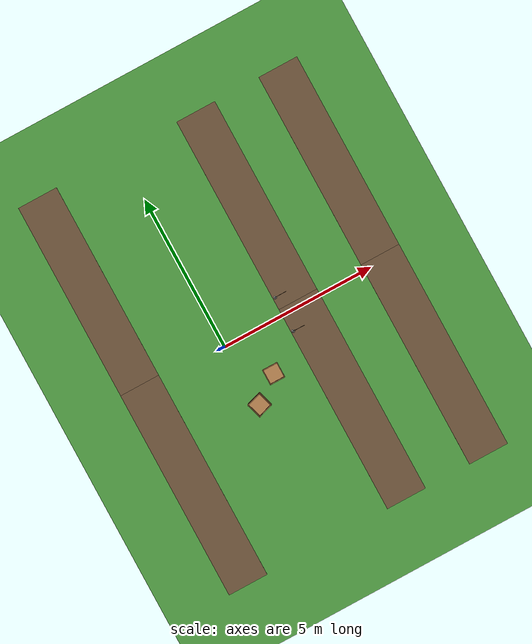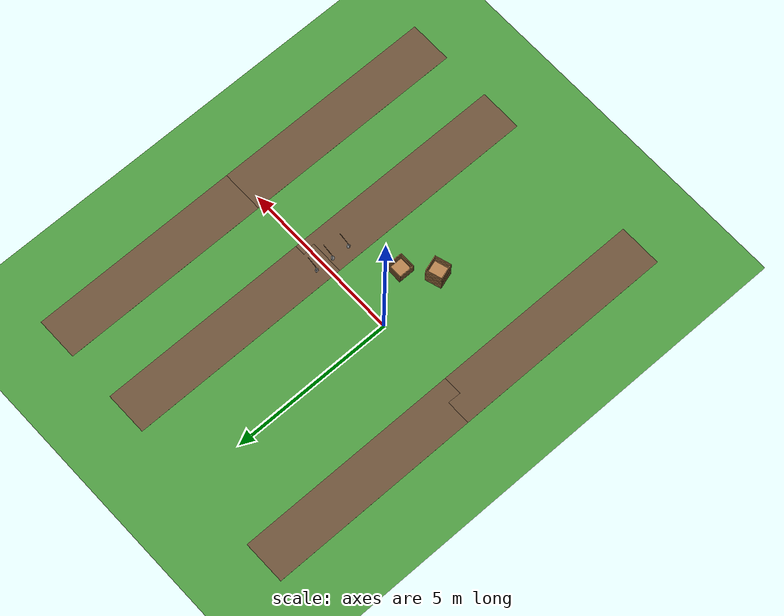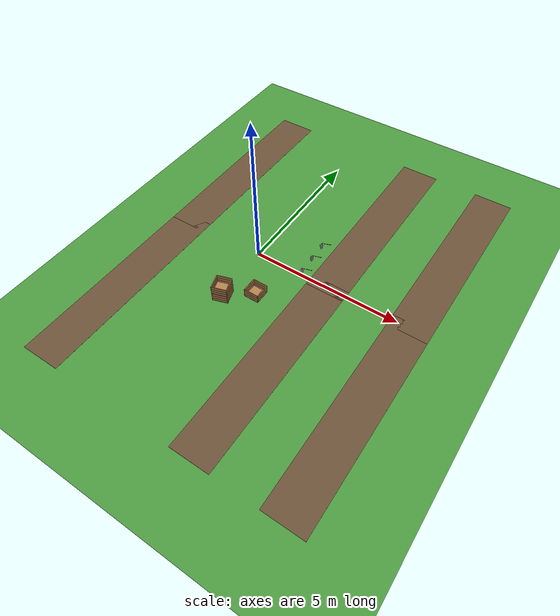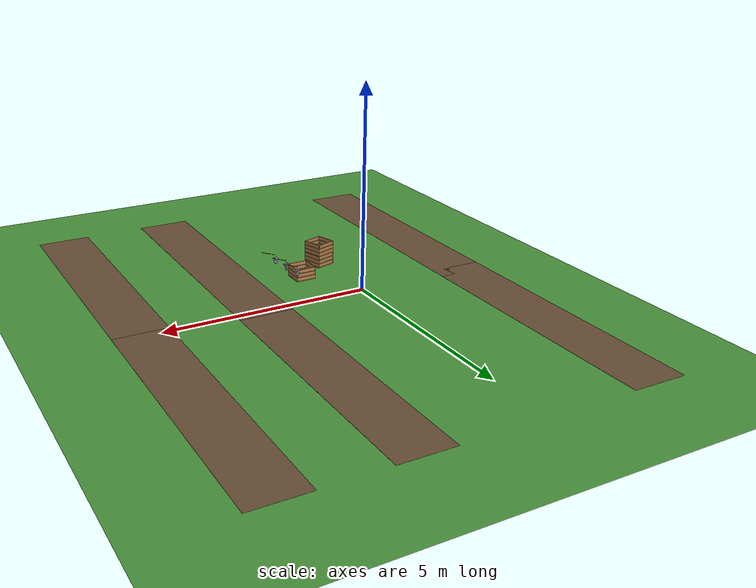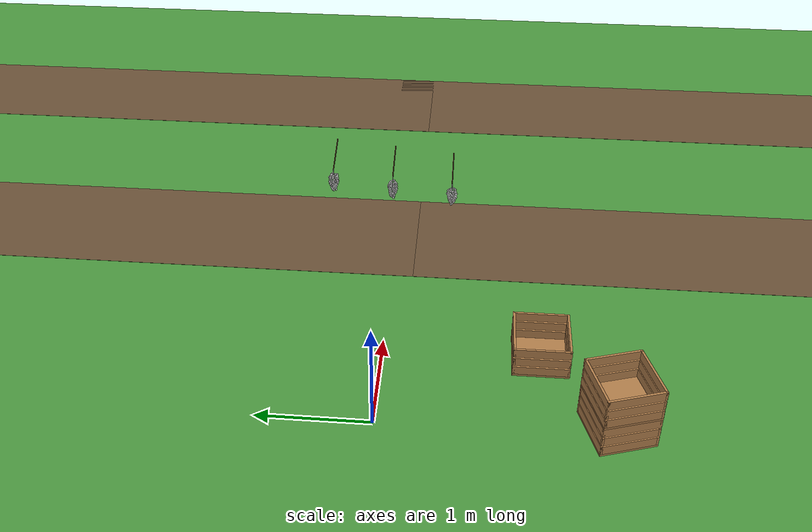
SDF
<sdf version="1.6">
 <world name="grape_vineyard">
  <physics type="ode">
   <max_step_size>0.001</max_step_size>
   <real_time_factor>1</real_time_factor>
   <real_time_update_rate>1000</real_time_update_rate>
  </physics>
  <gravity>0 0 -9.8</gravity>
  <magnetic_field>34 0 -36</magnetic_field>
  <spherical_coordinates>
   <surface_model>EARTH_WGS84</surface_model>
   <latitude_deg>0</latitude_deg>
   <longitude_deg>0</longitude_deg>
   <elevation>0</elevation>
   <heading_deg>0</heading_deg>
  </spherical_coordinates>
  <scene>
   <ambient>0.55 0.55 0.55 1</ambient>
   <background>0.62 0.78 0.92 1</background>
   <shadows>true</shadows>
   <sky><clouds><speed>4</speed></clouds></sky>
  </scene>
  <light name="sun" type="directional">
   <pose>0 0 10 0 0 0</pose>
   <diffuse>0.9 0.88 0.8 1</diffuse>
   <specular>0.2 0.2 0.2 1</specular>
   <direction>-0.4 0.3 -0.85</direction>
   <attenuation>
    <range>1000</range>
    <constant>0.9</constant>
    <linear>0.01</linear>
    <quadratic>0.001</quadratic>
   </attenuation>
  </light>
  <model name="vineyard_ground">
   <static>true</static>
   <link name="ground">
    <collision name="ground">
     <geometry><plane><normal>0 0 1</normal><size>200 200</size></plane></geometry>
     <surface><friction><ode><mu>100</mu><mu2>50</mu2></ode></friction></surface>
    </collision>
    <visual name="grass">
     <geometry><plane><normal>0 0 1</normal><size>200 200</size></plane></geometry>
     <material>
      <script><uri>file://media/materials/scripts/gazebo.material</uri><name>Gazebo/Grass</name></script>
     </material>
    </visual>
    <visual name="soil0">
     <pose>2.6 -3.2 0.001 0 0 1.5708</pose>
     <geometry><box><size>6.8 1.3 0.002</size></box></geometry>
     <material>
      <ambient>0.36 0.27 0.18 1</ambient>
      <diffuse>0.42 0.32 0.22 1</diffuse>
      <specular>0 0 0 1</specular>
     </material>
    </visual>
    <visual name="soil1">
     <pose>2.6 3.2 0.001 0 0 1.5708</pose>
     <geometry><box><size>6.8 1.3 0.002</size></box></geometry>
     <material>
      <ambient>0.36 0.27 0.18 1</ambient>
      <diffuse>0.42 0.32 0.22 1</diffuse>
      <specular>0 0 0 1</specular>
     </material>
    </visual>
    <visual name="soil2">
     <pose>5.4 -3.2 0.001 0 0 1.5708</pose>
     <geometry><box><size>6.8 1.3 0.002</size></box></geometry>
     <material>
      <ambient>0.36 0.27 0.18 1</ambient>
      <diffuse>0.42 0.32 0.22 1</diffuse>
      <specular>0 0 0 1</specular>
     </material>
    </visual>
    <visual name="soil3">
     <pose>5.4 3.2 0.001 0 0 1.5708</pose>
     <geometry><box><size>6.8 1.3 0.002</size></box></geometry>
     <material>
      <ambient>0.36 0.27 0.18 1</ambient>
      <diffuse>0.42 0.32 0.22 1</diffuse>
      <specular>0 0 0 1</specular>
     </material>
    </visual>
    <visual name="soil4">
     <pose>-2.8 -3.2 0.001 0 0 1.5708</pose>
     <geometry><box><size>6.8 1.3 0.002</size></box></geometry>
     <material>
      <ambient>0.36 0.27 0.18 1</ambient>
      <diffuse>0.42 0.32 0.22 1</diffuse>
      <specular>0 0 0 1</specular>
     </material>
    </visual>
    <visual name="soil5">
     <pose>-2.8 3.2 0.001 0 0 1.5708</pose>
     <geometry><box><size>6.8 1.3 0.002</size></box></geometry>
     <material>
      <ambient>0.36 0.27 0.18 1</ambient>
      <diffuse>0.42 0.32 0.22 1</diffuse>
      <specular>0 0 0 1</specular>
     </material>
    </visual>
   </link>
  </model>
  <include><uri>model://grape_harvest_crate</uri><name>crate0</name><pose>0.9 -1.4 0 0 0 0</pose></include>
  <include><uri>model://grape_harvest_crate</uri><name>crate1</name><pose>0.1 -2 0 0 0 0.3</pose></include>
  <include><uri>model://grape_harvest_crate</uri><name>crate2</name><pose>0.1 -2 0.3 0 0 0.3</pose></include>
  <model name="bunch_canes">
   <static>true</static>
   <link name="canes">
    <visual name="cane0">
     <pose>2.175 6.42811e-07 1.18 0 1.2405 3.67321e-06</pose>
     <geometry><cylinder><radius>0.005</radius><length>0.3700</length></cylinder></geometry>
     <material><ambient>0.25 0.17 0.08 1</ambient><diffuse>0.3 0.2 0.1 1</diffuse></material>
    </visual>
    <visual name="cane1">
     <pose>2.175 0.550001 1.23 0 1.2405 3.67321e-06</pose>
     <geometry><cylinder><radius>0.005</radius><length>0.3700</length></cylinder></geometry>
     <material><ambient>0.25 0.17 0.08 1</ambient><diffuse>0.3 0.2 0.1 1</diffuse></material>
    </visual>
    <visual name="cane2">
     <pose>2.175 -0.549999 1.13 0 1.2405 3.67321e-06</pose>
     <geometry><cylinder><radius>0.005</radius><length>0.3700</length></cylinder></geometry>
     <material><ambient>0.25 0.17 0.08 1</ambient><diffuse>0.3 0.2 0.1 1</diffuse></material>
    </visual>
   </link>
  </model>
  <include>
   <uri>model://grape_bunch_kyoho_black</uri>
   <name>harvest_bunch_0_kyoho_black</name>
   <pose>2 0 1.1 0 0 0</pose>
  </include>
  <include>
   <uri>model://grape_bunch_red_globe</uri>
   <name>harvest_bunch_1_red_globe</name>
   <pose>2 0.55 1.15 0 0 0</pose>
  </include>
  <include>
   <uri>model://grape_bunch_green_thompson</uri>
   <name>harvest_bunch_2_green_thompson</name>
   <pose>2 -0.55 1.05 0 0 0</pose>
  </include>
 </world>
</sdf>

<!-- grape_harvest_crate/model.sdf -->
<sdf version="1.6">
  <model name="grape_harvest_crate">
    <static>true</static>
    <link name="crate">
      <visual name="bottom">
        <pose>0 0 0.01 0 0 0</pose>
        <geometry>
          <box>
            <size>0.5 0.5 0.02</size>
          </box>
        </geometry>
        <material>
          <script>
            <uri>file://media/materials/scripts/gazebo.material</uri>
            <name>Gazebo/Wood</name>
          </script>
        </material>
      </visual>
      <collision name="bottom">
        <pose>0 0 0.01 0 0 0</pose>
        <geometry>
          <box>
            <size>0.5 0.5 0.02</size>
          </box>
        </geometry>
      </collision>
      <visual name="front_slat0">
        <pose>0.24 0 0.0616667 0 0 0</pose>
        <geometry>
          <box>
            <size>0.02 0.5 0.0833333</size>
          </box>
        </geometry>
        <material>
          <script>
            <uri>file://media/materials/scripts/gazebo.material</uri>
            <name>Gazebo/Wood</name>
          </script>
        </material>
      </visual>
      <visual name="front_slat1">
        <pose>0.24 0 0.16 0 0 0</pose>
        <geometry>
          <box>
            <size>0.02 0.5 0.0833333</size>
          </box>
        </geometry>
        <material>
          <script>
            <uri>file://media/materials/scripts/gazebo.material</uri>
            <name>Gazebo/Wood</name>
          </script>
        </material>
      </visual>
      <visual name="front_slat2">
        <pose>0.24 0 0.258333 0 0 0</pose>
        <geometry>
          <box>
            <size>0.02 0.5 0.0833333</size>
          </box>
        </geometry>
        <material>
          <script>
            <uri>file://media/materials/scripts/gazebo.material</uri>
            <name>Gazebo/Wood</name>
          </script>
        </material>
      </visual>
      <collision name="front">
        <pose>0.24 0 0.16 0 0 0</pose>
        <geometry>
          <box>
            <size>0.02 0.5 0.28</size>
          </box>
        </geometry>
      </collision>
      <visual name="back_slat0">
        <pose>-0.24 0 0.0616667 0 0 0</pose>
        <geometry>
          <box>
            <size>0.02 0.5 0.0833333</size>
          </box>
        </geometry>
        <material>
          <script>
            <uri>file://media/materials/scripts/gazebo.material</uri>
            <name>Gazebo/Wood</name>
          </script>
        </material>
      </visual>
      <visual name="back_slat1">
        <pose>-0.24 0 0.16 0 0 0</pose>
        <geometry>
          <box>
            <size>0.02 0.5 0.0833333</size>
          </box>
        </geometry>
        <material>
          <script>
            <uri>file://media/materials/scripts/gazebo.material</uri>
            <name>Gazebo/Wood</name>
          </script>
        </material>
      </visual>
      <visual name="back_slat2">
        <pose>-0.24 0 0.258333 0 0 0</pose>
        <geometry>
          <box>
            <size>0.02 0.5 0.0833333</size>
          </box>
        </geometry>
        <material>
          <script>
            <uri>file://media/materials/scripts/gazebo.material</uri>
            <name>Gazebo/Wood</name>
          </script>
        </material>
      </visual>
      <collision name="back">
        <pose>-0.24 0 0.16 0 0 0</pose>
        <geometry>
          <box>
            <size>0.02 0.5 0.28</size>
          </box>
        </geometry>
      </collision>
      <visual name="left_slat0">
        <pose>0 0.24 0.0616667 0 0 0</pose>
        <geometry>
          <box>
            <size>0.5 0.02 0.0833333</size>
          </box>
        </geometry>
        <material>
          <script>
            <uri>file://media/materials/scripts/gazebo.material</uri>
            <name>Gazebo/Wood</name>
          </script>
        </material>
      </visual>
      <visual name="left_slat1">
        <pose>0 0.24 0.16 0 0 0</pose>
        <geometry>
          <box>
            <size>0.5 0.02 0.0833333</size>
          </box>
        </geometry>
        <material>
          <script>
            <uri>file://media/materials/scripts/gazebo.material</uri>
            <name>Gazebo/Wood</name>
          </script>
        </material>
      </visual>
      <visual name="left_slat2">
        <pose>0 0.24 0.258333 0 0 0</pose>
        <geometry>
          <box>
            <size>0.5 0.02 0.0833333</size>
          </box>
        </geometry>
        <material>
          <script>
            <uri>file://media/materials/scripts/gazebo.material</uri>
            <name>Gazebo/Wood</name>
          </script>
        </material>
      </visual>
      <collision name="left">
        <pose>0 0.24 0.16 0 0 0</pose>
        <geometry>
          <box>
            <size>0.5 0.02 0.28</size>
          </box>
        </geometry>
      </collision>
      <visual name="right_slat0">
        <pose>0 -0.24 0.0616667 0 0 0</pose>
        <geometry>
          <box>
            <size>0.5 0.02 0.0833333</size>
          </box>
        </geometry>
        <material>
          <script>
            <uri>file://media/materials/scripts/gazebo.material</uri>
            <name>Gazebo/Wood</name>
          </script>
        </material>
      </visual>
      <visual name="right_slat1">
        <pose>0 -0.24 0.16 0 0 0</pose>
        <geometry>
          <box>
            <size>0.5 0.02 0.0833333</size>
          </box>
        </geometry>
        <material>
          <script>
            <uri>file://media/materials/scripts/gazebo.material</uri>
            <name>Gazebo/Wood</name>
          </script>
        </material>
      </visual>
      <visual name="right_slat2">
        <pose>0 -0.24 0.258333 0 0 0</pose>
        <geometry>
          <box>
            <size>0.5 0.02 0.0833333</size>
          </box>
        </geometry>
        <material>
          <script>
            <uri>file://media/materials/scripts/gazebo.material</uri>
            <name>Gazebo/Wood</name>
          </script>
        </material>
      </visual>
      <collision name="right">
        <pose>0 -0.24 0.16 0 0 0</pose>
        <geometry>
          <box>
            <size>0.5 0.02 0.28</size>
          </box>
        </geometry>
      </collision>
    </link>
  </model>
</sdf>

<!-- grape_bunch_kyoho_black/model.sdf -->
<sdf version="1.6">
  <model name="grape_bunch_kyoho_black">
    <link name="bunch">
      <gravity>false</gravity>
      <inertial>
        <pose>0.000482909 0.000467824 -0.121924 0 0 0</pose>
        <mass>0.15</mass>
        <inertia>
          <ixx>0.000620469</ixx>
          <iyy>0.000615636</iyy>
          <izz>0.00024592</izz>
          <ixy>0</ixy>
          <ixz>0</ixz>
          <iyz>0</iyz>
        </inertia>
      </inertial>
      <collision name="berries">
        <pose>0.000482909 0.000467824 -0.121924 0 0 0</pose>
        <geometry>
          <box>
            <size>0.0982011 0.100151 0.199016</size>
          </box>
        </geometry>
      </collision>
      <visual name="berries">
        <geometry>
          <mesh>
            <uri>model://grape_bunch_kyoho_black/meshes/berries.obj</uri>
          </mesh>
        </geometry>
      </visual>
      <visual name="stem">
        <geometry>
          <mesh>
            <uri>model://grape_bunch_kyoho_black/meshes/stem.obj</uri>
          </mesh>
        </geometry>
      </visual>
    </link>
  </model>
</sdf>

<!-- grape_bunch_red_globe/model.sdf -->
<sdf version="1.6">
  <model name="grape_bunch_red_globe">
    <link name="bunch">
      <gravity>false</gravity>
      <inertial>
        <pose>0.000676066 -0.000948932 -0.121872 0 0 0</pose>
        <mass>0.15</mass>
        <inertia>
          <ixx>0.000619996</ixx>
          <iyy>0.000625199</iyy>
          <izz>0.000256956</izz>
          <ixy>0</ixy>
          <ixz>0</ixz>
          <iyz>0</iyz>
        </inertia>
      </inertial>
      <collision name="berries">
        <pose>0.000676066 -0.000948932 -0.121872 0 0 0</pose>
        <geometry>
          <box>
            <size>0.102403 0.10035 0.19882</size>
          </box>
        </geometry>
      </collision>
      <visual name="berries">
        <geometry>
          <mesh>
            <uri>model://grape_bunch_red_globe/meshes/berries.obj</uri>
          </mesh>
        </geometry>
      </visual>
      <visual name="stem">
        <geometry>
          <mesh>
            <uri>model://grape_bunch_red_globe/meshes/stem.obj</uri>
          </mesh>
        </geometry>
      </visual>
    </link>
  </model>
</sdf>

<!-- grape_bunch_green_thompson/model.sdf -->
<sdf version="1.6">
  <model name="grape_bunch_green_thompson">
    <link name="bunch">
      <gravity>false</gravity>
      <inertial>
        <pose>-0.000303978 -0.000209901 -0.117999 0 0 0</pose>
        <mass>0.15</mass>
        <inertia>
          <ixx>0.000590714</ixx>
          <iyy>0.000589551</iyy>
          <izz>0.000270263</izz>
          <ixy>0</ixy>
          <ixz>0</ixz>
          <iyz>0</iyz>
        </inertia>
      </inertial>
      <collision name="berries">
        <pose>-0.000303978 -0.000209901 -0.117999 0 0 0</pose>
        <geometry>
          <box>
            <size>0.10375 0.104197 0.190788</size>
          </box>
        </geometry>
      </collision>
      <visual name="berries">
        <geometry>
          <mesh>
            <uri>model://grape_bunch_green_thompson/meshes/berries.obj</uri>
          </mesh>
        </geometry>
      </visual>
      <visual name="stem">
        <geometry>
          <mesh>
            <uri>model://grape_bunch_green_thompson/meshes/stem.obj</uri>
          </mesh>
        </geometry>
      </visual>
    </link>
  </model>
</sdf>
